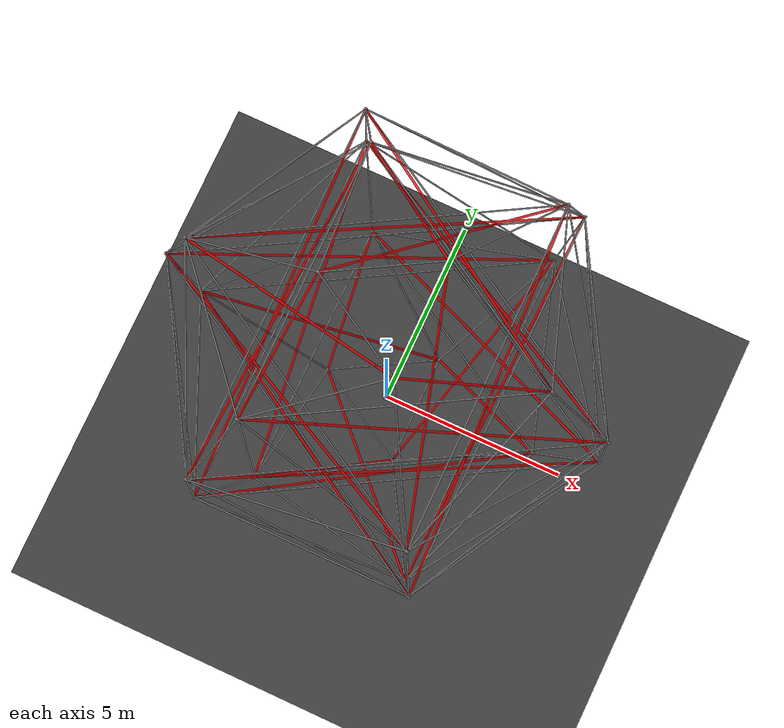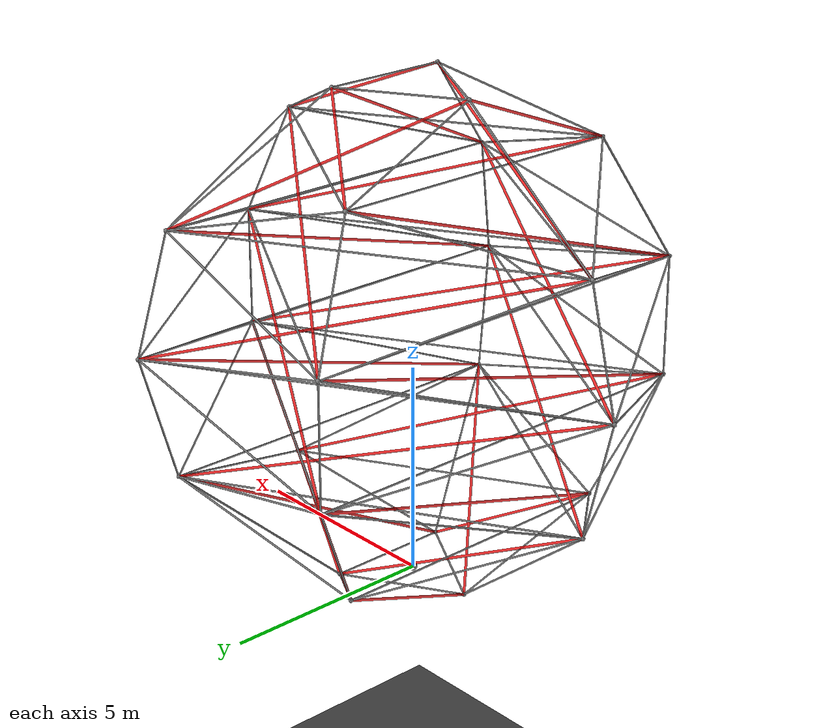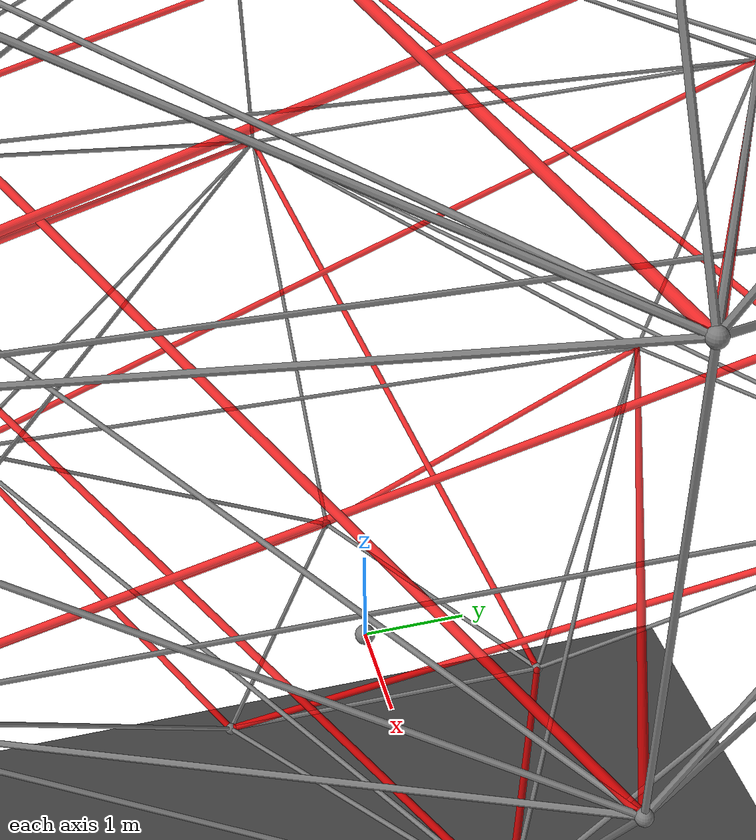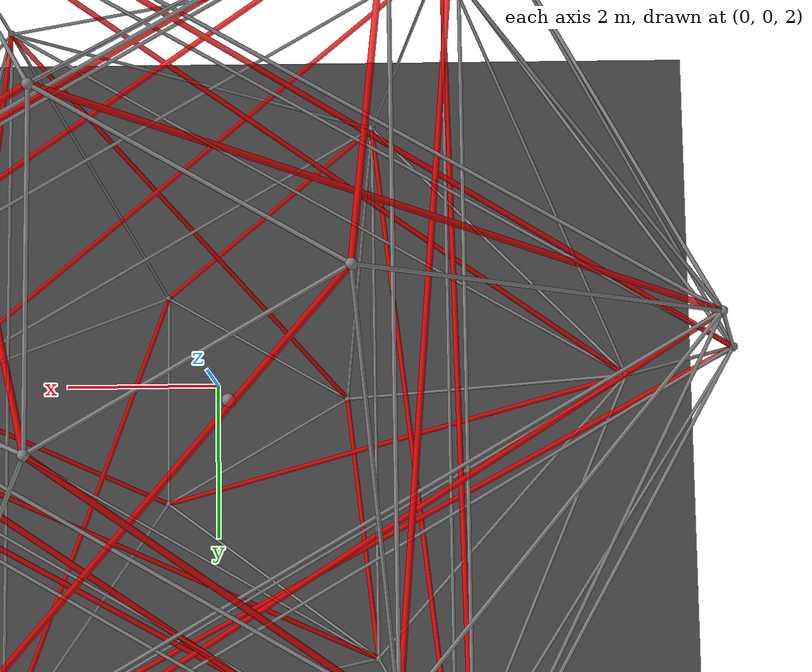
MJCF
<mujoco model="dbar">
    <option timestep="0.01" integrator="RK4" gravity = "0 0 0" collision="predefined" density="1000"/>

    <default>
        <geom size="0.03"/>
        <site size="0.05"/>
    </default>

    <asset>
        <texture type="skybox" builtin="gradient" rgb1="0.6 0.6 0.6" rgb2="0 0 0" width="512" height="512"/>

        <texture name="texplane" type="2d" builtin="checker" rgb1=".25 .25 .25" rgb2=".3 .3 .3" width="512" height="512" mark="cross" markrgb=".8 .8 .8"/>

        <material name="matplane" reflectance="0.3" texture="texplane" texrepeat="1 1" texuniform="true"/>
    </asset>
<worldbody>
<light directional="true" diffuse=".8 .8 .8" specular=".2 .2 .2" pos="0 0 5" dir="0 0 -1">
</light>
<body name="floor" pos="0 0 0">
<geom name="floor" pos="0 0 -10" size="0 0 1" type="plane" material="matplane">
</geom>
<site name="s0" pos="0 0 0" size="0.1">
</site>
</body>
<body name="body0" pos="0.857  1.4843 0.    ">
<joint type="free" pos="0 0 0">
</joint>
<geom name="body0" type="capsule" fromto="0 0 0 -6.1233 -1.4843  2.875 " rgba="1 0 0 .8">
</geom>
<site name="site0" pos="0 0 0">
</site>
<site name="site1" pos="-6.1233 -1.4843  2.875 ">
</site>
</body>
<body name="body1" pos="-2.0858  3.6127  1.4375">
<joint type="free" pos="0 0 0">
</joint>
<geom name="body1" type="capsule" fromto="0 0 0  7.9111 -3.6127  2.875 " rgba="1 0 0 .8">
</geom>
<site name="site2" pos="0 0 0">
</site>
<site name="site3" pos=" 7.9111 -3.6127  2.875 ">
</site>
</body>
<body name="body2" pos="0.857  1.4843 0.    ">
<joint type="free" pos="0 0 0">
</joint>
<geom name="body2" type="capsule" fromto="0 0 0  3.3146 -1.4843  1.4375" rgba="1 0 0 .8">
</geom>
<site name="site4" pos=" 3.3146 -1.4843  1.4375">
</site>
</body>
<body name="body3" pos="-1.7139  0.      0.    ">
<joint type="free" pos="0 0 0">
</joint>
<geom name="body3" type="capsule" fromto="0 0 0  4.3471 -4.5608  2.875 " rgba="1 0 0 .8">
</geom>
<site name="site5" pos="0 0 0">
</site>
<site name="site6" pos=" 4.3471 -4.5608  2.875 ">
</site>
</body>
<body name="body4" pos="-2.0858 -3.6127  1.4375">
<joint type="free" pos="0 0 0">
</joint>
<geom name="body4" type="capsule" fromto="0 0 0 -0.8268  8.6575  2.875 " rgba="1 0 0 .8">
</geom>
<site name="site7" pos="0 0 0">
</site>
<site name="site8" pos="-0.8268  8.6575  2.875 ">
</site>
</body>
<body name="body5" pos="-1.7139  0.      0.    ">
<joint type="free" pos="0 0 0">
</joint>
<geom name="body5" type="capsule" fromto="0 0 0 -0.3719  3.6127  1.4375" rgba="1 0 0 .8">
</geom>
<site name="site9" pos="-0.3719  3.6127  1.4375">
</site>
</body>
<body name="body6" pos=" 0.857  -1.4843  0.    ">
<joint type="free" pos="0 0 0">
</joint>
<geom name="body6" type="capsule" fromto="0 0 0 1.7762 6.0451 2.875 " rgba="1 0 0 .8">
</geom>
<site name="site10" pos="0 0 0">
</site>
<site name="site11" pos="1.7762 6.0451 2.875 ">
</site>
</body>
<body name="body7" pos=" 4.1716 -0.      1.4375">
<joint type="free" pos="0 0 0">
</joint>
<geom name="body7" type="capsule" fromto="0 0 0 -7.0842 -5.0448  2.875 " rgba="1 0 0 .8">
</geom>
<site name="site12" pos="0 0 0">
</site>
<site name="site13" pos="-7.0842 -5.0448  2.875 ">
</site>
</body>
<body name="body8" pos=" 0.857  -1.4843  0.    ">
<joint type="free" pos="0 0 0">
</joint>
<geom name="body8" type="capsule" fromto="0 0 0 -2.9428 -2.1284  1.4375" rgba="1 0 0 .8">
</geom>
<site name="site14" pos="-2.9428 -2.1284  1.4375">
</site>
</body>
<body name="body9" pos="2.6332 4.5608 2.875 ">
<joint type="free" pos="0 0 0">
</joint>
<geom name="body9" type="capsule" fromto="0 0 0 -8.6332 -4.5608  2.875 " rgba="1 0 0 .8">
</geom>
<site name="site15" pos="0 0 0">
</site>
<site name="site16" pos="-8.6332 -4.5608  2.875 ">
</site>
</body>
<body name="body10" pos="-2.9126  5.0448  4.3125">
<joint type="free" pos="0 0 0">
</joint>
<geom name="body10" type="capsule" fromto="0 0 0  8.7379 -5.0448  2.875 " rgba="1 0 0 .8">
</geom>
<site name="site17" pos="0 0 0">
</site>
<site name="site18" pos=" 8.7379 -5.0448  2.875 ">
</site>
</body>
<body name="body11" pos="-5.2663  0.      2.875 ">
<joint type="free" pos="0 0 0">
</joint>
<geom name="body11" type="capsule" fromto="0 0 0  8.2663 -5.1962  2.875 " rgba="1 0 0 .8">
</geom>
<site name="site19" pos="0 0 0">
</site>
<site name="site20" pos=" 8.2663 -5.1962  2.875 ">
</site>
</body>
<body name="body12" pos="-2.9126 -5.0448  4.3125">
<joint type="free" pos="0 0 0">
</joint>
<geom name="body12" type="capsule" fromto="0 0 0  0.     10.0896  2.875 " rgba="1 0 0 .8">
</geom>
<site name="site21" pos="0 0 0">
</site>
<site name="site22" pos=" 0.     10.0896  2.875 ">
</site>
</body>
<body name="body13" pos=" 2.6332 -4.5608  2.875 ">
<joint type="free" pos="0 0 0">
</joint>
<geom name="body13" type="capsule" fromto="0 0 0 0.3668 9.757  2.875 " rgba="1 0 0 .8">
</geom>
<site name="site23" pos="0 0 0">
</site>
<site name="site24" pos="0.3668 9.757  2.875 ">
</site>
</body>
<body name="body14" pos=" 5.8253 -0.      4.3125">
<joint type="free" pos="0 0 0">
</joint>
<geom name="body14" type="capsule" fromto="0 0 0 -8.7379 -5.0448  2.875 " rgba="1 0 0 .8">
</geom>
<site name="site25" pos="0 0 0">
</site>
<site name="site26" pos="-8.7379 -5.0448  2.875 ">
</site>
</body>
<body name="body15" pos="3.     5.1962 5.75  ">
<joint type="free" pos="0 0 0">
</joint>
<geom name="body15" type="capsule" fromto="0 0 0 -8.2663 -5.1962  2.875 " rgba="1 0 0 .8">
</geom>
<site name="site27" pos="0 0 0">
</site>
<site name="site28" pos="-8.2663 -5.1962  2.875 ">
</site>
</body>
<body name="body16" pos="-2.9126  5.0448  7.1875">
<joint type="free" pos="0 0 0">
</joint>
<geom name="body16" type="capsule" fromto="0 0 0  7.0842 -5.0448  2.875 " rgba="1 0 0 .8">
</geom>
<site name="site29" pos="0 0 0">
</site>
<site name="site30" pos=" 7.0842 -5.0448  2.875 ">
</site>
</body>
<body name="body17" pos="-6.    0.    5.75">
<joint type="free" pos="0 0 0">
</joint>
<geom name="body17" type="capsule" fromto="0 0 0  8.6332 -4.5608  2.875 " rgba="1 0 0 .8">
</geom>
<site name="site31" pos="0 0 0">
</site>
<site name="site32" pos=" 8.6332 -4.5608  2.875 ">
</site>
</body>
<body name="body18" pos="-2.9126 -5.0448  7.1875">
<joint type="free" pos="0 0 0">
</joint>
<geom name="body18" type="capsule" fromto="0 0 0 0.8268 8.6575 2.875 " rgba="1 0 0 .8">
</geom>
<site name="site33" pos="0 0 0">
</site>
<site name="site34" pos="0.8268 8.6575 2.875 ">
</site>
</body>
<body name="body19" pos=" 3.     -5.1962  5.75  ">
<joint type="free" pos="0 0 0">
</joint>
<geom name="body19" type="capsule" fromto="0 0 0 -0.3668  9.757   2.875 " rgba="1 0 0 .8">
</geom>
<site name="site35" pos="0 0 0">
</site>
<site name="site36" pos="-0.3668  9.757   2.875 ">
</site>
</body>
<body name="body20" pos=" 5.8253 -0.      7.1875">
<joint type="free" pos="0 0 0">
</joint>
<geom name="body20" type="capsule" fromto="0 0 0 -7.9111 -3.6127  2.875 " rgba="1 0 0 .8">
</geom>
<site name="site37" pos="0 0 0">
</site>
<site name="site38" pos="-7.9111 -3.6127  2.875 ">
</site>
</body>
<body name="body21" pos="2.6332 4.5608 8.625 ">
<joint type="free" pos="0 0 0">
</joint>
<geom name="body21" type="capsule" fromto="0 0 0 -4.3471 -4.5608  2.875 " rgba="1 0 0 .8">
</geom>
<site name="site39" pos="0 0 0">
</site>
<site name="site40" pos="-4.3471 -4.5608  2.875 ">
</site>
</body>
<body name="body22" pos="-2.0858  3.6127 10.0625">
<joint type="free" pos="0 0 0">
</joint>
<geom name="body22" type="capsule" fromto="0 0 0  2.9428 -2.1284  1.4375" rgba="1 0 0 .8">
</geom>
<site name="site41" pos="0 0 0">
</site>
<site name="site42" pos=" 2.9428 -2.1284  1.4375">
</site>
</body>
<body name="body23" pos="-5.2663  0.      8.625 ">
<joint type="free" pos="0 0 0">
</joint>
<geom name="body23" type="capsule" fromto="0 0 0  6.1233 -1.4843  2.875 " rgba="1 0 0 .8">
</geom>
<site name="site43" pos="0 0 0">
</site>
<site name="site44" pos=" 6.1233 -1.4843  2.875 ">
</site>
</body>
<body name="body24" pos="-2.0858 -3.6127 10.0625">
<joint type="free" pos="0 0 0">
</joint>
<geom name="body24" type="capsule" fromto="0 0 0 0.3719 3.6127 1.4375" rgba="1 0 0 .8">
</geom>
<site name="site45" pos="0 0 0">
</site>
</body>
<body name="body25" pos=" 2.6332 -4.5608  8.625 ">
<joint type="free" pos="0 0 0">
</joint>
<geom name="body25" type="capsule" fromto="0 0 0 -1.7762  6.0451  2.875 " rgba="1 0 0 .8">
</geom>
<site name="site46" pos="0 0 0">
</site>
</body>
<body name="body26" pos=" 4.1716 -0.     10.0625">
<joint type="free" pos="0 0 0">
</joint>
<geom name="body26" type="capsule" fromto="0 0 0 -3.3146 -1.4843  1.4375" rgba="1 0 0 .8">
</geom>
<site name="site47" pos="0 0 0">
</site>
</body>
</worldbody>

<tendon>
<spatial name="S1" width="0.02">
<site site="site0">
</site>
<site site="site9">
</site>
</spatial>
<spatial name="S2" width="0.02">
<site site="site9">
</site>
<site site="site15">
</site>
</spatial>
<spatial name="S3" width="0.02">
<site site="site15">
</site>
<site site="site12">
</site>
</spatial>
<spatial name="S4" width="0.02">
<site site="site12">
</site>
<site site="site9">
</site>
</spatial>
<spatial name="S5" width="0.02">
<site site="site0">
</site>
<site site="site15">
</site>
</spatial>
<spatial name="S6" width="0.02">
<site site="site23">
</site>
<site site="site15">
</site>
</spatial>
<spatial name="S7" width="0.02">
<site site="site12">
</site>
<site site="site25">
</site>
</spatial>
<spatial name="S8" width="0.02">
<site site="site10">
</site>
<site site="site0">
</site>
</spatial>
<spatial name="S9" width="0.02">
<site site="site5">
</site>
<site site="site14">
</site>
</spatial>
<spatial name="S10" width="0.02">
<site site="site14">
</site>
<site site="site19">
</site>
</spatial>
<spatial name="S11" width="0.02">
<site site="site19">
</site>
<site site="site9">
</site>
</spatial>
<spatial name="S12" width="0.02">
<site site="site9">
</site>
<site site="site14">
</site>
</spatial>
<spatial name="S13" width="0.02">
<site site="site5">
</site>
<site site="site19">
</site>
</spatial>
<spatial name="S14" width="0.02">
<site site="site15">
</site>
<site site="site19">
</site>
</spatial>
<spatial name="S15" width="0.02">
<site site="site9">
</site>
<site site="site17">
</site>
</spatial>
<spatial name="S16" width="0.02">
<site site="site0">
</site>
<site site="site5">
</site>
</spatial>
<spatial name="S17" width="0.02">
<site site="site10">
</site>
<site site="site12">
</site>
</spatial>
<spatial name="S18" width="0.02">
<site site="site12">
</site>
<site site="site23">
</site>
</spatial>
<spatial name="S19" width="0.02">
<site site="site23">
</site>
<site site="site14">
</site>
</spatial>
<spatial name="S20" width="0.02">
<site site="site14">
</site>
<site site="site12">
</site>
</spatial>
<spatial name="S21" width="0.02">
<site site="site10">
</site>
<site site="site23">
</site>
</spatial>
<spatial name="S22" width="0.02">
<site site="site19">
</site>
<site site="site23">
</site>
</spatial>
<spatial name="S23" width="0.02">
<site site="site14">
</site>
<site site="site21">
</site>
</spatial>
<spatial name="S24" width="0.02">
<site site="site5">
</site>
<site site="site10">
</site>
</spatial>
<spatial name="S25" width="0.02">
<site site="site15">
</site>
<site site="site17">
</site>
</spatial>
<spatial name="S26" width="0.02">
<site site="site17">
</site>
<site site="site27">
</site>
</spatial>
<spatial name="S27" width="0.02">
<site site="site27">
</site>
<site site="site25">
</site>
</spatial>
<spatial name="S28" width="0.02">
<site site="site25">
</site>
<site site="site15">
</site>
</spatial>
<spatial name="S29" width="0.02">
<site site="site25">
</site>
<site site="site17">
</site>
</spatial>
<spatial name="S30" width="0.02">
<site site="site15">
</site>
<site site="site27">
</site>
</spatial>
<spatial name="S31" width="0.02">
<site site="site35">
</site>
<site site="site27">
</site>
</spatial>
<spatial name="S32" width="0.02">
<site site="site25">
</site>
<site site="site37">
</site>
</spatial>
<spatial name="S33" width="0.02">
<site site="site19">
</site>
<site site="site21">
</site>
</spatial>
<spatial name="S34" width="0.02">
<site site="site21">
</site>
<site site="site31">
</site>
</spatial>
<spatial name="S35" width="0.02">
<site site="site31">
</site>
<site site="site17">
</site>
</spatial>
<spatial name="S36" width="0.02">
<site site="site17">
</site>
<site site="site19">
</site>
</spatial>
<spatial name="S37" width="0.02">
<site site="site17">
</site>
<site site="site21">
</site>
</spatial>
<spatial name="S38" width="0.02">
<site site="site19">
</site>
<site site="site31">
</site>
</spatial>
<spatial name="S39" width="0.02">
<site site="site27">
</site>
<site site="site31">
</site>
</spatial>
<spatial name="S40" width="0.02">
<site site="site17">
</site>
<site site="site29">
</site>
</spatial>
<spatial name="S41" width="0.02">
<site site="site23">
</site>
<site site="site25">
</site>
</spatial>
<spatial name="S42" width="0.02">
<site site="site25">
</site>
<site site="site35">
</site>
</spatial>
<spatial name="S43" width="0.02">
<site site="site35">
</site>
<site site="site21">
</site>
</spatial>
<spatial name="S44" width="0.02">
<site site="site21">
</site>
<site site="site23">
</site>
</spatial>
<spatial name="S45" width="0.02">
<site site="site21">
</site>
<site site="site25">
</site>
</spatial>
<spatial name="S46" width="0.02">
<site site="site23">
</site>
<site site="site35">
</site>
</spatial>
<spatial name="S47" width="0.02">
<site site="site31">
</site>
<site site="site35">
</site>
</spatial>
<spatial name="S48" width="0.02">
<site site="site21">
</site>
<site site="site33">
</site>
</spatial>
<spatial name="S49" width="0.02">
<site site="site27">
</site>
<site site="site29">
</site>
</spatial>
<spatial name="S50" width="0.02">
<site site="site29">
</site>
<site site="site39">
</site>
</spatial>
<spatial name="S51" width="0.02">
<site site="site39">
</site>
<site site="site37">
</site>
</spatial>
<spatial name="S52" width="0.02">
<site site="site37">
</site>
<site site="site27">
</site>
</spatial>
<spatial name="S53" width="0.02">
<site site="site37">
</site>
<site site="site29">
</site>
</spatial>
<spatial name="S54" width="0.02">
<site site="site27">
</site>
<site site="site39">
</site>
</spatial>
<spatial name="S55" width="0.02">
<site site="site46">
</site>
<site site="site39">
</site>
</spatial>
<spatial name="S56" width="0.02">
<site site="site37">
</site>
<site site="site47">
</site>
</spatial>
<spatial name="S57" width="0.02">
<site site="site31">
</site>
<site site="site33">
</site>
</spatial>
<spatial name="S58" width="0.02">
<site site="site33">
</site>
<site site="site43">
</site>
</spatial>
<spatial name="S59" width="0.02">
<site site="site43">
</site>
<site site="site29">
</site>
</spatial>
<spatial name="S60" width="0.02">
<site site="site29">
</site>
<site site="site31">
</site>
</spatial>
<spatial name="S61" width="0.02">
<site site="site29">
</site>
<site site="site33">
</site>
</spatial>
<spatial name="S62" width="0.02">
<site site="site31">
</site>
<site site="site43">
</site>
</spatial>
<spatial name="S63" width="0.02">
<site site="site39">
</site>
<site site="site43">
</site>
</spatial>
<spatial name="S64" width="0.02">
<site site="site29">
</site>
<site site="site41">
</site>
</spatial>
<spatial name="S65" width="0.02">
<site site="site35">
</site>
<site site="site37">
</site>
</spatial>
<spatial name="S66" width="0.02">
<site site="site37">
</site>
<site site="site46">
</site>
</spatial>
<spatial name="S67" width="0.02">
<site site="site46">
</site>
<site site="site33">
</site>
</spatial>
<spatial name="S68" width="0.02">
<site site="site33">
</site>
<site site="site35">
</site>
</spatial>
<spatial name="S69" width="0.02">
<site site="site33">
</site>
<site site="site37">
</site>
</spatial>
<spatial name="S70" width="0.02">
<site site="site35">
</site>
<site site="site46">
</site>
</spatial>
<spatial name="S71" width="0.02">
<site site="site43">
</site>
<site site="site46">
</site>
</spatial>
<spatial name="S72" width="0.02">
<site site="site33">
</site>
<site site="site45">
</site>
</spatial>
<spatial name="S73" width="0.02">
<site site="site39">
</site>
<site site="site41">
</site>
</spatial>
<spatial name="S74" width="0.02">
<site site="site42">
</site>
<site site="site47">
</site>
</spatial>
<spatial name="S75" width="0.02">
<site site="site47">
</site>
<site site="site39">
</site>
</spatial>
<spatial name="S76" width="0.02">
<site site="site47">
</site>
<site site="site41">
</site>
</spatial>
<spatial name="S77" width="0.02">
<site site="site39">
</site>
<site site="site42">
</site>
</spatial>
<spatial name="S78" width="0.02">
<site site="site44">
</site>
<site site="site42">
</site>
</spatial>
<spatial name="S79" width="0.02">
<site site="site43">
</site>
<site site="site45">
</site>
</spatial>
<spatial name="S80" width="0.02">
<site site="site40">
</site>
<site site="site41">
</site>
</spatial>
<spatial name="S81" width="0.02">
<site site="site41">
</site>
<site site="site43">
</site>
</spatial>
<spatial name="S82" width="0.02">
<site site="site41">
</site>
<site site="site45">
</site>
</spatial>
<spatial name="S83" width="0.02">
<site site="site43">
</site>
<site site="site40">
</site>
</spatial>
<spatial name="S84" width="0.02">
<site site="site42">
</site>
<site site="site40">
</site>
</spatial>
<spatial name="S85" width="0.02">
<site site="site46">
</site>
<site site="site47">
</site>
</spatial>
<spatial name="S86" width="0.02">
<site site="site44">
</site>
<site site="site45">
</site>
</spatial>
<spatial name="S87" width="0.02">
<site site="site45">
</site>
<site site="site46">
</site>
</spatial>
<spatial name="S88" width="0.02">
<site site="site45">
</site>
<site site="site47">
</site>
</spatial>
<spatial name="S89" width="0.02">
<site site="site46">
</site>
<site site="site44">
</site>
</spatial>
<spatial name="S90" width="0.02">
<site site="site40">
</site>
<site site="site44">
</site>
</spatial>
</tendon>

<equality>
<connect active="true" name="body22body0" body1="body2" body2="body0" anchor="0 0 0">
</connect>
<connect active="true" name="body02body11" body1="body0" body2="body11" anchor="-6.1233 -1.4843  2.875 ">
</connect>
<connect active="true" name="body12body5" body1="body1" body2="body5" anchor="0 0 0">
</connect>
<connect active="true" name="body12body14" body1="body1" body2="body14" anchor=" 7.9111 -3.6127  2.875 ">
</connect>
<connect active="true" name="body72body2" body1="body7" body2="body2" anchor="0 0 0">
</connect>
<connect active="true" name="body52body3" body1="body5" body2="body3" anchor="0 0 0">
</connect>
<connect active="true" name="body32body13" body1="body3" body2="body13" anchor=" 4.3471 -4.5608  2.875 ">
</connect>
<connect active="true" name="body42body8" body1="body4" body2="body8" anchor="0 0 0">
</connect>
<connect active="true" name="body42body10" body1="body4" body2="body10" anchor="-0.8268  8.6575  2.875 ">
</connect>
<connect active="true" name="body62body8" body1="body6" body2="body8" anchor="0 0 0">
</connect>
<connect active="true" name="body62body9" body1="body6" body2="body9" anchor="1.7762 6.0451 2.875 ">
</connect>
<connect active="true" name="body122body7" body1="body12" body2="body7" anchor="0 0 0">
</connect>
<connect active="true" name="body92body17" body1="body9" body2="body17" anchor="-8.6332 -4.5608  2.875 ">
</connect>
<connect active="true" name="body102body20" body1="body10" body2="body20" anchor=" 8.7379 -5.0448  2.875 ">
</connect>
<connect active="true" name="body192body11" body1="body19" body2="body11" anchor="0 0 0">
</connect>
<connect active="true" name="body122body16" body1="body12" body2="body16" anchor=" 0.     10.0896  2.875 ">
</connect>
<connect active="true" name="body152body13" body1="body15" body2="body13" anchor="0 0 0">
</connect>
<connect active="true" name="body142body18" body1="body14" body2="body18" anchor="-8.7379 -5.0448  2.875 ">
</connect>
<connect active="true" name="body232body15" body1="body23" body2="body15" anchor="0 0 0">
</connect>
<connect active="true" name="body262body16" body1="body26" body2="body16" anchor="0 0 0">
</connect>
<connect active="true" name="body172body25" body1="body17" body2="body25" anchor=" 8.6332 -4.5608  2.875 ">
</connect>
<connect active="true" name="body182body22" body1="body18" body2="body22" anchor="0.8268 8.6575 2.875 ">
</connect>
<connect active="true" name="body212body19" body1="body21" body2="body19" anchor="0 0 0">
</connect>
<connect active="true" name="body242body20" body1="body24" body2="body20" anchor="0 0 0">
</connect>
<connect active="true" name="body242body21" body1="body24" body2="body21" anchor="0.3719 3.6127 1.4375">
</connect>
<connect active="true" name="body252body22" body1="body25" body2="body22" anchor="-1.7762  6.0451  2.875 ">
</connect>
<connect active="true" name="body232body26" body1="body23" body2="body26" anchor=" 6.1233 -1.4843  2.875 ">
</connect>
</equality>

<actuator>
<position tendon="S1" kp="0">
</position>
<position tendon="S2" kp="0">
</position>
<position tendon="S3" kp="0">
</position>
<position tendon="S4" kp="0">
</position>
<position tendon="S5" kp="0">
</position>
<position tendon="S6" kp="0">
</position>
<position tendon="S7" kp="0">
</position>
<position tendon="S8" kp="0">
</position>
<position tendon="S9" kp="0">
</position>
<position tendon="S10" kp="0">
</position>
<position tendon="S11" kp="0">
</position>
<position tendon="S12" kp="0">
</position>
<position tendon="S13" kp="0">
</position>
<position tendon="S14" kp="0">
</position>
<position tendon="S15" kp="0">
</position>
<position tendon="S16" kp="0">
</position>
<position tendon="S17" kp="0">
</position>
<position tendon="S18" kp="0">
</position>
<position tendon="S19" kp="0">
</position>
<position tendon="S20" kp="0">
</position>
<position tendon="S21" kp="0">
</position>
<position tendon="S22" kp="0">
</position>
<position tendon="S23" kp="0">
</position>
<position tendon="S24" kp="0">
</position>
<position tendon="S25" kp="0">
</position>
<position tendon="S26" kp="0">
</position>
<position tendon="S27" kp="0">
</position>
<position tendon="S28" kp="0">
</position>
<position tendon="S29" kp="0">
</position>
<position tendon="S30" kp="0">
</position>
<position tendon="S31" kp="0">
</position>
<position tendon="S32" kp="0">
</position>
<position tendon="S33" kp="0">
</position>
<position tendon="S34" kp="0">
</position>
<position tendon="S35" kp="0">
</position>
<position tendon="S36" kp="0">
</position>
<position tendon="S37" kp="0">
</position>
<position tendon="S38" kp="0">
</position>
<position tendon="S39" kp="0">
</position>
<position tendon="S40" kp="0">
</position>
<position tendon="S41" kp="0">
</position>
<position tendon="S42" kp="0">
</position>
<position tendon="S43" kp="0">
</position>
<position tendon="S44" kp="0">
</position>
<position tendon="S45" kp="0">
</position>
<position tendon="S46" kp="0">
</position>
<position tendon="S47" kp="0">
</position>
<position tendon="S48" kp="0">
</position>
<position tendon="S49" kp="0">
</position>
<position tendon="S50" kp="0">
</position>
<position tendon="S51" kp="0">
</position>
<position tendon="S52" kp="0">
</position>
<position tendon="S53" kp="0">
</position>
<position tendon="S54" kp="0">
</position>
<position tendon="S55" kp="0">
</position>
<position tendon="S56" kp="0">
</position>
<position tendon="S57" kp="0">
</position>
<position tendon="S58" kp="0">
</position>
<position tendon="S59" kp="0">
</position>
<position tendon="S60" kp="0">
</position>
<position tendon="S61" kp="0">
</position>
<position tendon="S62" kp="0">
</position>
<position tendon="S63" kp="0">
</position>
<position tendon="S64" kp="0">
</position>
<position tendon="S65" kp="0">
</position>
<position tendon="S66" kp="0">
</position>
<position tendon="S67" kp="0">
</position>
<position tendon="S68" kp="0">
</position>
<position tendon="S69" kp="0">
</position>
<position tendon="S70" kp="0">
</position>
<position tendon="S71" kp="0">
</position>
<position tendon="S72" kp="0">
</position>
<position tendon="S73" kp="0">
</position>
<position tendon="S74" kp="0">
</position>
<position tendon="S75" kp="0">
</position>
<position tendon="S76" kp="0">
</position>
<position tendon="S77" kp="0">
</position>
<position tendon="S78" kp="0">
</position>
<position tendon="S79" kp="0">
</position>
<position tendon="S80" kp="0">
</position>
<position tendon="S81" kp="0">
</position>
<position tendon="S82" kp="0">
</position>
<position tendon="S83" kp="0">
</position>
<position tendon="S84" kp="0">
</position>
<position tendon="S85" kp="0">
</position>
<position tendon="S86" kp="0">
</position>
<position tendon="S87" kp="0">
</position>
<position tendon="S88" kp="0">
</position>
<position tendon="S89" kp="0">
</position>
<position tendon="S90" kp="0">
</position>
</actuator>

</mujoco>
